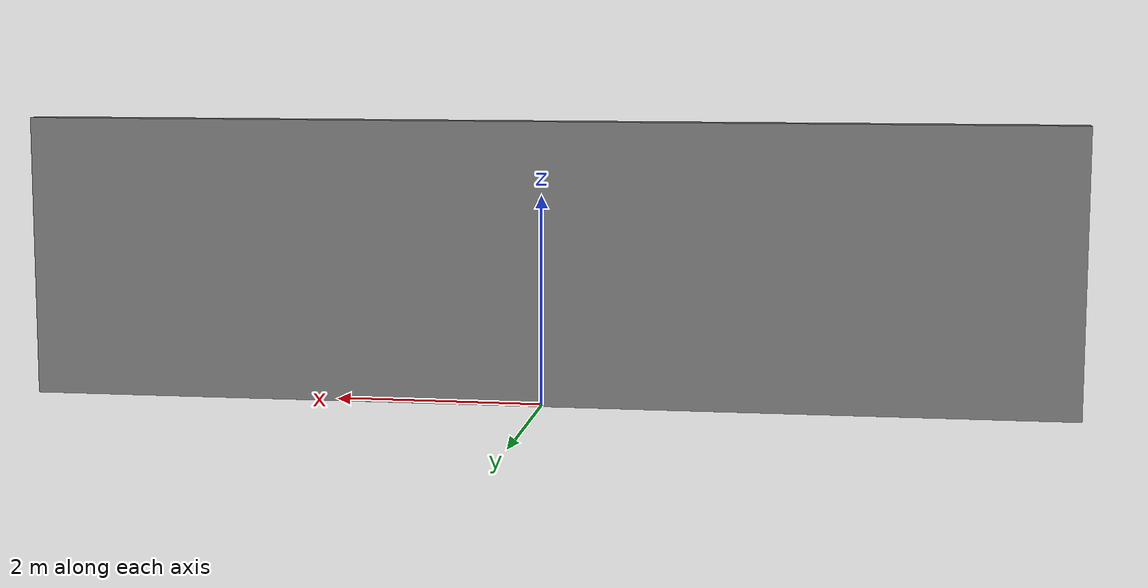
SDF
<?xml version="1.0"?>
<sdf version="1.6">
  <model name="grey_wall">
    <static>true</static>
    <link name="link">
      <pose>0 0 1.35 0 0 0</pose>
      <collision name="collision">
        <geometry><box><size>10.0 0.20 2.70</size></box></geometry>
      </collision>
      <visual name="visual">
        <geometry><box><size>10.0 0.20 2.70</size></box></geometry>
        <material><ambient>0.30 0.30 0.30 1</ambient><diffuse>0.45 0.45 0.45 1</diffuse></material>
      </visual>
    </link>
  </model>
</sdf>
